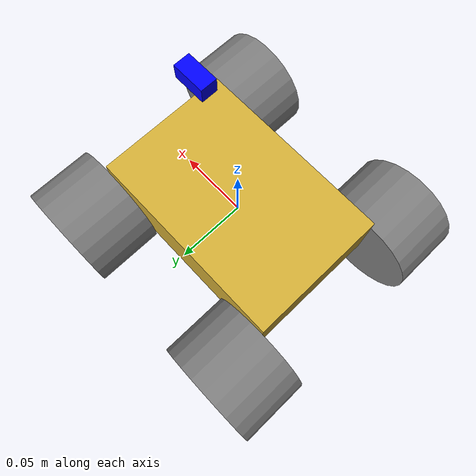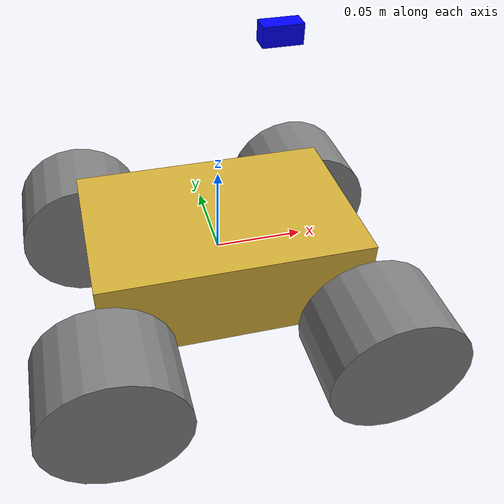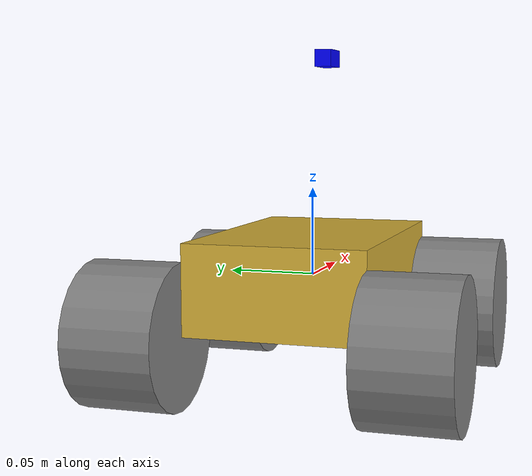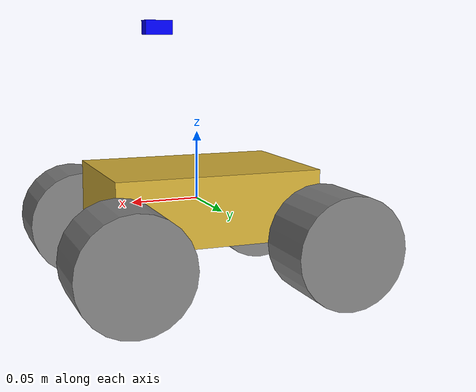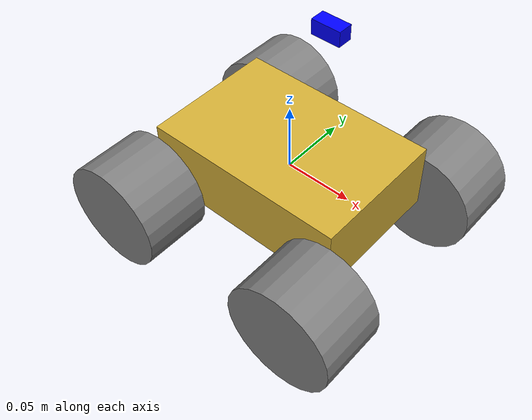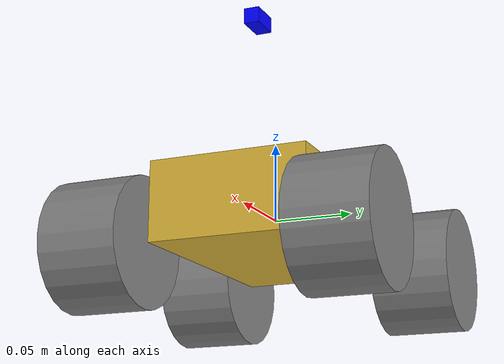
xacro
<?xml version="1.0"?>
<robot name="atom" xmlns:xacro="http://www.ros.org/wiki/xacro">
  <!-- Import Rviz colors -->
  <xacro:include filename="$(find atom_description)/urdf/materials.xacro" />
  <!-- Import xacro macros -->
  <xacro:include filename="$(find atom_description)/urdf/macros.xacro" />

  <!-- Main body -->
  <xacro:cube name="base_link" mass="1.0" x="0.15" y="0.1" z="0.05" origin="0 0 0" color="gold" />

  <!-- Define all the wheels -->
  <xacro:wheel name="front_left" mass="0.1" radius="0.04" height="0.05" origin="0.075 0.075 -0.025" color="grey" />
  <xacro:wheel name="front_right" mass="0.1" radius="0.04" height="0.05" origin="0.075 -0.075 -0.025" color="grey" />
  <xacro:wheel name="back_left" mass="0.1" radius="0.04" height="0.05" origin="-0.075 0.075 -0.025" color="grey" />
  <xacro:wheel name="back_right" mass="0.1" radius="0.04" height="0.05" origin="-0.075 -0.075 -0.025" color="grey" />

  <!-- Camera -->
  <xacro:cube name="camera" mass="0.1" x="0.02" y="0.01" z="0.01" origin="0 0 0" color="blue" />

  <joint name="joint_camera" type="fixed">
    <parent link="base_link" />
    <child link="camera" />
    <origin xyz="0.03 0 0.125" />
  </joint>
</robot>

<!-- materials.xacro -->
<robot>
  <!-- Colors used by Rviz -->
  <material name="gold">
    <color rgba="${212/255} ${175/255} ${55/255} 1.0"/>
  </material>

  <material name="blue">
    <color rgba="0.0 0.0 1.0 1.0"/>
  </material>

  <material name="grey">
    <color rgba="0.5 0.5 0.5 1.0"/>
  </material>
</robot>

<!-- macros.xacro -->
<robot xmlns:xacro="http://www.ros.org/wiki/xacro">
  <!-- Inertia macro definitions -->
  <xacro:macro name="cylinder_inertia" params="mass radius height">
    <inertial>
      <mass value="${mass}"/>
      <inertia
          ixx="${mass / 12.0 * (3 * radius * radius + height * height)}"
          iyy="${mass / 12.0 * (3 * radius * radius + height * height)}"
          izz="${mass / 2.0 * radius * radius}"
          ixy="0"
          ixz="0"
          iyz="0"/>
    </inertial>
  </xacro:macro>

  <!-- Wheel definition -->
  <xacro:macro name="wheel" params="name origin mass radius height color">
    <!-- Joint -->
    <joint name="joint_${name}" type="continuous">
      <parent link="base_link" />
      <child link="wheel_${name}" />
      <axis xyz="0 1 0" />
      <origin xyz="${origin}" />
      <limit effort="100" velocity="100" />
      <joint_properties damping="0.0" friction="0.0" />
    </joint>

    <!-- Link -->
    <link name="wheel_${name}">
      <collision>
        <origin rpy="${pi / 2} 0 0" />
        <geometry>
          <cylinder length="${height}" radius="${radius}" />
        </geometry>
      </collision>
      <xacro:cylinder_inertia mass="${mass}" height="${height}" radius="${radius}" />
      <visual>
        <origin rpy="${pi / 2} 0 0" />
        <geometry>
          <cylinder length="${height}" radius="${radius}" />
        </geometry>
        <material name="${color}" />
      </visual>
    </link>

    <!-- Motor -->
    <transmission name="transmission_${name}">
      <type>transmission_interface/SimpleTransmission</type>
      <joint name="joint_${name}">
        <hardwareInterface>hardware_interface/VelocityJointInterface</hardwareInterface>
      </joint>
      <actuator name="motor_${name}">
        <mechanicalReduction>1</mechanicalReduction>
      </actuator>
    </transmission>
  </xacro:macro>

  <xacro:macro name="cube" params="name mass x y z origin color">
    <link name="${name}">
      <collision>
        <origin xyz="${origin}" />
        <geometry>
          <box size="${x} ${y} ${z}" />
        </geometry>
      </collision>
      <inertial>
        <mass value="${mass}"/>
        <inertia
          ixx="${mass / 12.0 * (y * y + z * z)}"
          iyy="${mass / 12.0 * (x * x + z * z)}"
          izz="${mass / 12.0 * (x * x + y * y)}"
          ixy="0"
          ixz="0"
          iyz="0"/>
      </inertial>
      <visual>
        <origin xyz="${origin}" />
        <geometry>
          <box size="${x} ${y} ${z}" />
        </geometry>
        <material name="${color}"/>
      </visual>
    </link>
  </xacro:macro>

  <xacro:macro name="box_inertia" params="m x y z">
    <inertia ixx="${m*(y*y+z*z)/12}" ixy = "0" ixz = "0" iyy="${m*(x*x+z*z)/12}" iyz = "0" izz="${m*(x*x+z*z)/12}" />
  </xacro:macro>

  <xacro:macro name="sphere_inertia" params="m r">
    <inertia ixx="${2*m*r*r/5}" ixy = "0" ixz = "0" iyy="${2*m*r*r/5}" iyz = "0" izz="${2*m*r*r/5}" />
  </xacro:macro>
</robot>
